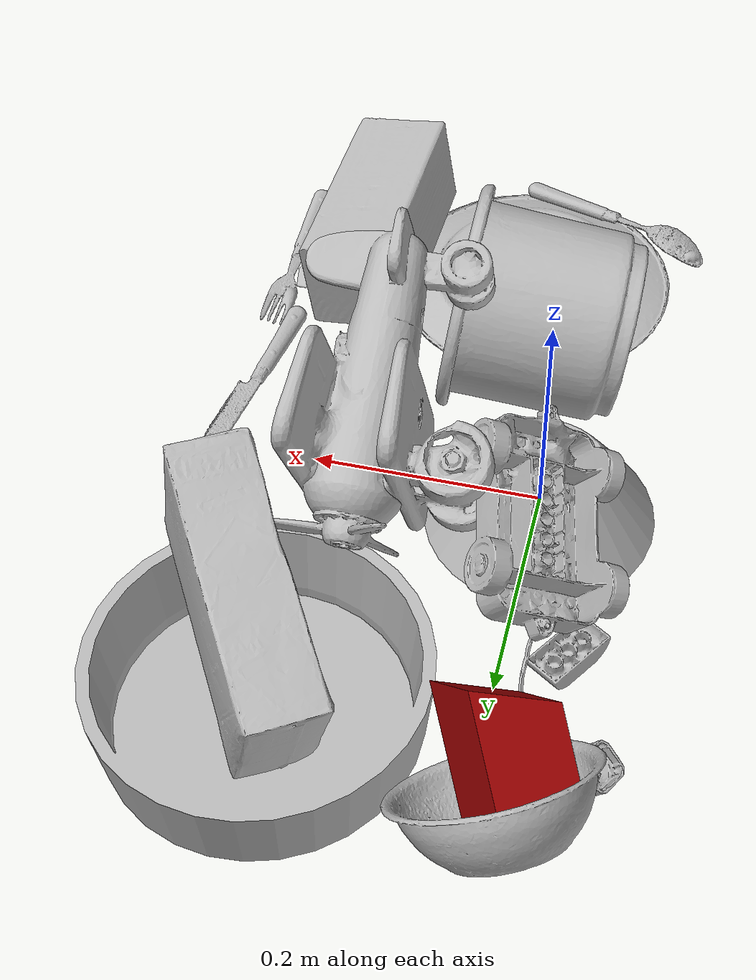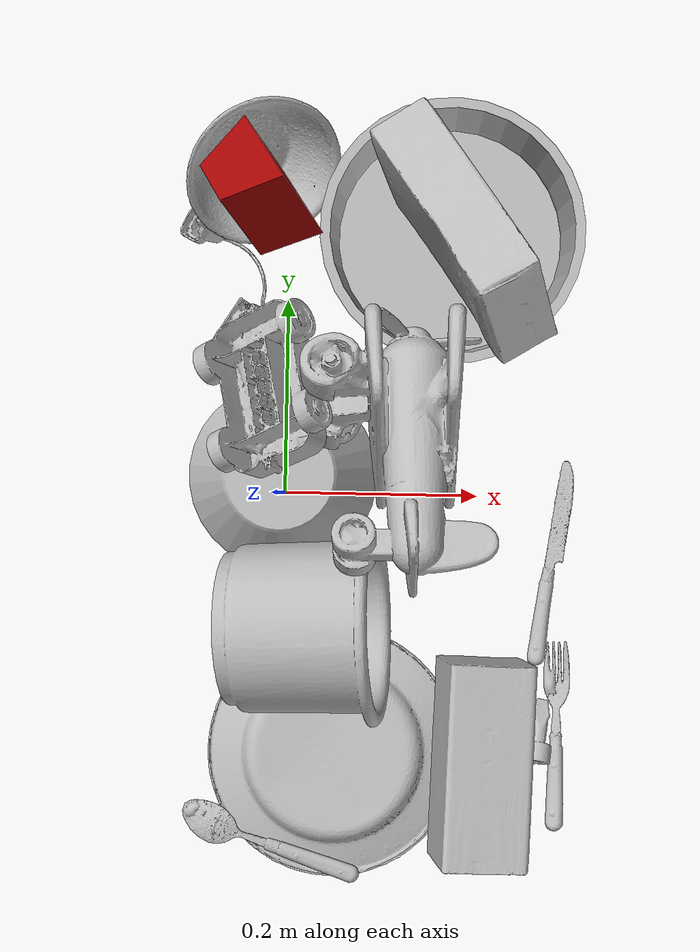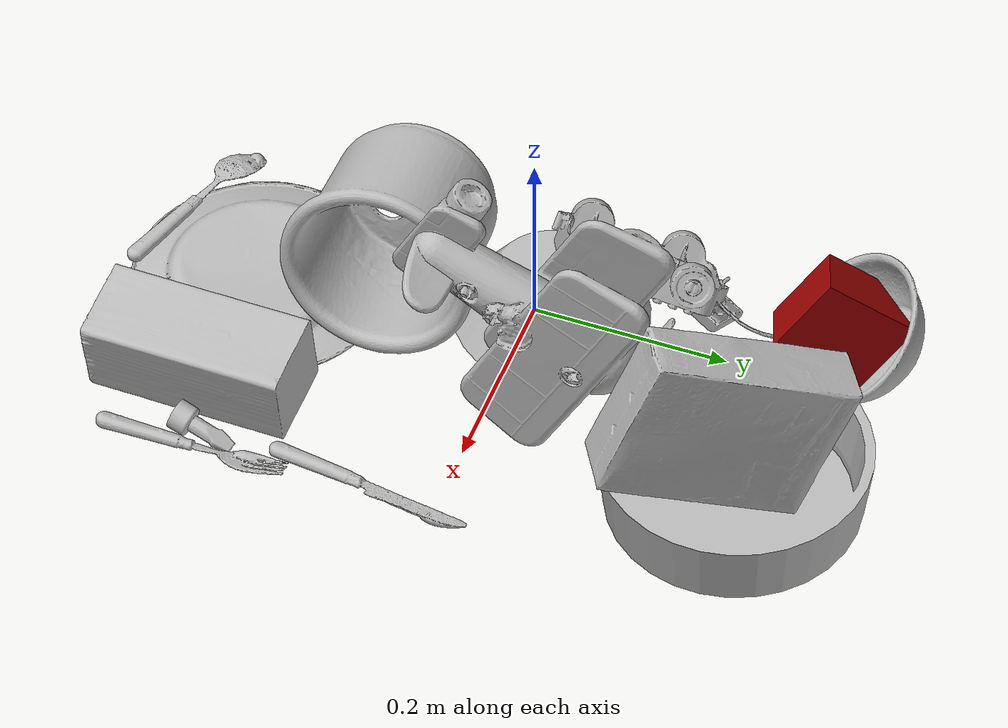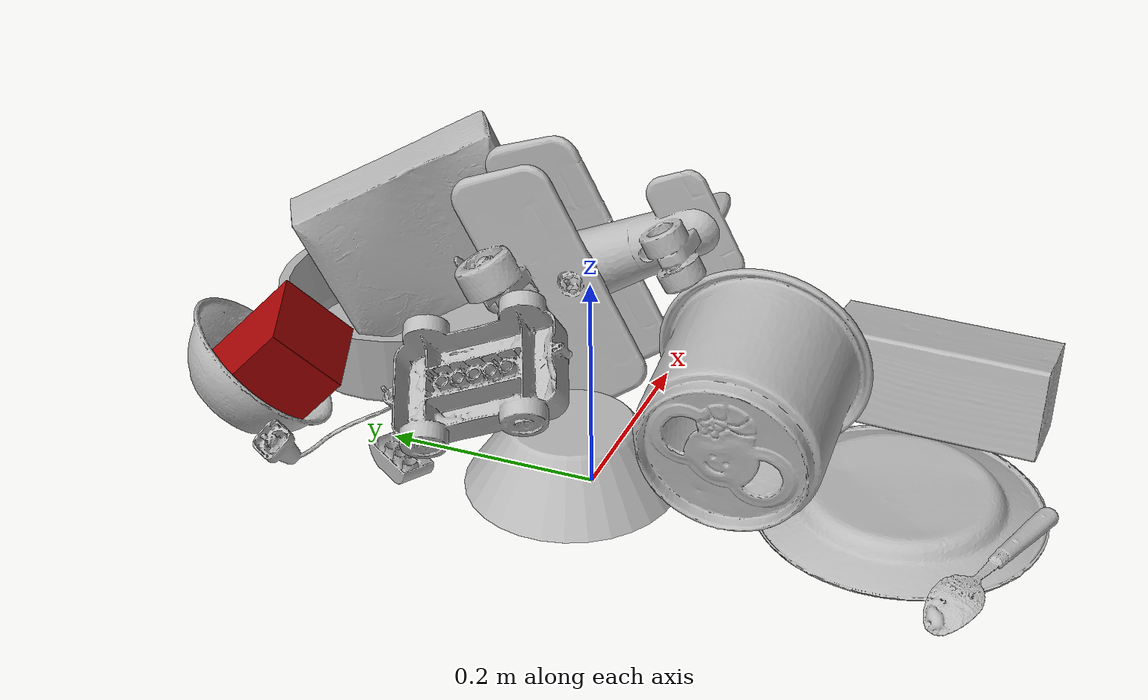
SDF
<sdf version="1.4">
  <world name="default">
    <light name="light1" type="point">
      <pose>0 0 1 0 0 0</pose>
      <diffuse>3 3 3 1</diffuse>
      <specular>3 3 3 1</specular>
    </light>
    <light name="light2" type="point">
      <pose>0 0.5 2 0 0 0</pose>
      <diffuse>1 1 1 1</diffuse>
      <specular>1 1 1 1</specular>
    </light>
    <light name="light3" type="point">
      <pose>0 0.5 2 0 0 0</pose>
      <diffuse>3 3 3 1</diffuse>
      <specular>3 3 3 1</specular>
    </light>
    <scene>
      <ambient>0.7 0.7 0.7</ambient>
    </scene>
    <model name="plate1">
      <link name="link_plate1">
        <collision name="default">
          <geometry>
            <mesh>
              <uri>model://plate/collision_meshes/collision.obj</uri>
              <scale>1.0 1.0 1.0</scale>
            </mesh>
          </geometry>
          <surface>
            <friction>
              <ode>
                <mu>0.5</mu>
                <mu2>0.5</mu2>
              </ode>
            </friction>
          <contact>
        <ode>
            <max_vel>0</max_vel>
            <min_depth>0.0001</min_depth>
            <kp>1e8</kp>
        </ode>
    </contact></surface>
        </collision>
        <visual name="default">
          <geometry>
            <mesh>
              <uri>model://plate/visual_meshes/visual.dae</uri>
              <scale>1.0 1.0 1.0</scale>
            </mesh>
          </geometry>
        </visual>
        <inertial>
          <mass>0.18013060092926025</mass>
          <pose>-0.0006044624606147408 0.0002782579977065325 -0.0010561981471255422 0.0022187543261248163 -0.003225499970721242 0.452618951787785</pose>
          <inertia>
            <ixx>0.00084265455</ixx>
            <iyy>0.000834595</iyy>
            <izz>0.0016481068</izz>
            <ixy>0</ixy>
            <ixz>0</ixz>
            <iyz>0</iyz>
          </inertia>
        </inertial>
      </link>
      <pose>0.05592770874500275 -0.26762545108795166 0.013417967595160007 3.1415158159665917 -0.0035191463486704258 1.1590495646529593</pose>
    </model>
    <model name="plate2">
      <link name="link_plate2">
        <collision name="default">
          <geometry>
            <mesh>
              <uri>model://pan_tefal/collision_meshes/collision.obj</uri>
              <scale>1.0 1.0 1.0</scale>
            </mesh>
          </geometry>
          <surface>
            <friction>
              <ode>
                <mu>0.5</mu>
                <mu2>0.5</mu2>
              </ode>
            </friction>
          <contact>
        <ode>
            <max_vel>0</max_vel>
            <min_depth>0.0001</min_depth>
            <kp>1e8</kp>
        </ode>
    </contact></surface>
        </collision>
        <visual name="default">
          <geometry>
            <mesh>
              <uri>model://pan_tefal/visual_meshes/visual.dae</uri>
              <scale>1.0 1.0 1.0</scale>
            </mesh>
          </geometry>
        </visual>
        <inertial>
          <mass>1.1554980278015137</mass>
          <pose>-0.00018001958960667253 3.279018710600212e-05 -0.008514934219419956 0.0008190268412404128 -0.0003301434555644904 -0.33185316474518306</pose>
          <inertia>
            <ixx>0.007976347</ixx>
            <iyy>0.008027771</iyy>
            <izz>0.014682918</izz>
            <ixy>0</ixy>
            <ixz>0</ixz>
            <iyz>0</iyz>
          </inertia>
        </inertial>
      </link>
      <pose>0.16630111634731293 0.2642088830471039 0.038050759583711624 6.1190176236884475e-06 6.077164610750241e-07 -0.3445673787147492</pose>
    </model>
    <model name="bowl1">
      <link name="link_bowl1">
        <collision name="default">
          <geometry>
            <mesh>
              <uri>model://bowl/collision_meshes/collision.obj</uri>
              <scale>1.0 1.0 1.0</scale>
            </mesh>
          </geometry>
          <surface>
            <friction>
              <ode>
                <mu>0.5</mu>
                <mu2>0.5</mu2>
              </ode>
            </friction>
          <contact>
        <ode>
            <max_vel>0</max_vel>
            <min_depth>0.0001</min_depth>
            <kp>1e8</kp>
        </ode>
    </contact></surface>
        </collision>
        <visual name="default">
          <geometry>
            <mesh>
              <uri>model://bowl/visual_meshes/visual.dae</uri>
              <scale>1.0 1.0 1.0</scale>
            </mesh>
          </geometry>
        </visual>
        <inertial>
          <mass>0.08154366910457611</mass>
          <pose>0.0002044497523456812 -0.0010302083101123571 -0.0008042664267122746 -0.01576409235239578 0.014546819263349199 0.7140418673414882</pose>
          <inertia>
            <ixx>0.00018731231</ixx>
            <iyy>0.000183127</iyy>
            <izz>0.00031512365</izz>
            <ixy>0</ixy>
            <ixz>0</ixz>
            <iyz>0</iyz>
          </inertia>
        </inertial>
      </link>
      <pose>-0.03154604509472847 0.33418703079223633 0.051355112344026566 -0.427734494985217 -0.6686724435257182 2.774262395867444</pose>
    </model>
    <model name="bowl2">
      <link name="link_bowl2">
        <collision name="default">
          <geometry>
            <mesh>
              <uri>model://bowl_a/collision_meshes/collision.obj</uri>
              <scale>1.0 1.0 1.0</scale>
            </mesh>
          </geometry>
          <surface>
            <friction>
              <ode>
                <mu>0.5</mu>
                <mu2>0.5</mu2>
              </ode>
            </friction>
          <contact>
        <ode>
            <max_vel>0</max_vel>
            <min_depth>0.0001</min_depth>
            <kp>1e8</kp>
        </ode>
    </contact></surface>
        </collision>
        <visual name="default">
          <geometry>
            <mesh>
              <uri>model://bowl_a/visual_meshes/visual.dae</uri>
              <scale>1.0 1.0 1.0</scale>
            </mesh>
          </geometry>
        </visual>
        <inertial>
          <mass>0.4363987147808075</mass>
          <pose>0.0002786752884276211 4.73113359475974e-05 -0.0013765294570475817 -0.0009805318297205425 -0.0010938254473046036 -0.19123908587825994</pose>
          <inertia>
            <ixx>0.0012424473</ixx>
            <iyy>0.001250075</iyy>
            <izz>0.0022097398</izz>
            <ixy>0</ixy>
            <ixz>0</ixz>
            <iyz>0</iyz>
          </inertia>
        </inertial>
      </link>
      <pose>-0.0023081167601048946 0.01760282926261425 0.030100759118795395 -3.141584268370963 1.707171323962011e-05 1.9944466438544108</pose>
    </model>
    <model name="silverware1">
      <link name="link_silverware1">
        <collision name="default">
          <geometry>
            <mesh>
              <uri>model://spoon/collision_meshes/collision.obj</uri>
              <scale>1.0 1.0 1.0</scale>
            </mesh>
          </geometry>
          <surface>
            <friction>
              <ode>
                <mu>0.5</mu>
                <mu2>0.5</mu2>
              </ode>
            </friction>
          <contact>
        <ode>
            <max_vel>0</max_vel>
            <min_depth>0.0001</min_depth>
            <kp>1e8</kp>
        </ode>
    </contact></surface>
        </collision>
        <visual name="default">
          <geometry>
            <mesh>
              <uri>model://spoon/visual_meshes/visual.dae</uri>
              <scale>1.0 1.0 1.0</scale>
            </mesh>
          </geometry>
        </visual>
        <inertial>
          <mass>0.034700214862823486</mass>
          <pose>-0.00552632100880146 -0.0016034168656915426 -0.0007271654903888702 0.03521477925438783 -0.03906582568380071 0.006150611591128785</pose>
          <inertia>
            <ixx>1.9300821e-06</ixx>
            <iyy>0.00013203312</iyy>
            <izz>0.00013298499</izz>
            <ixy>0</ixy>
            <ixz>0</ixz>
            <iyz>0</iyz>
          </inertia>
        </inertial>
      </link>
      <pose>-0.008194107562303543 -0.3609839081764221 0.013265055604279041 2.9643729175197624 -0.03775351683094402 2.8091340021605844</pose>
    </model>
    <model name="box1">
      <link name="link_box1">
        <collision name="default">
          <geometry>
            <mesh>
              <uri>model://cracker_box/collision_meshes/collision.obj</uri>
              <scale>1.0 1.0 1.0</scale>
            </mesh>
          </geometry>
          <surface>
            <friction>
              <ode>
                <mu>0.5</mu>
                <mu2>0.5</mu2>
              </ode>
            </friction>
          <contact>
        <ode>
            <max_vel>0</max_vel>
            <min_depth>0.0001</min_depth>
            <kp>1e8</kp>
        </ode>
    </contact></surface>
        </collision>
        <visual name="default">
          <geometry>
            <mesh>
              <uri>model://cracker_box/visual_meshes/visual.dae</uri>
              <scale>1.0 1.0 1.0</scale>
            </mesh>
          </geometry>
        </visual>
        <inertial>
          <mass>1.831273078918457</mass>
          <pose>0.000946414191275835 0.00025434247800149024 -0.0017029533628374338 -0.0003162074786093215 -0.01110648680647863 0.0025467950006863548</pose>
          <inertia>
            <ixx>0.0046579414</ixx>
            <iyy>0.0076911766</iyy>
            <izz>0.010976015</izz>
            <ixy>0</ixy>
            <ixz>0</ixz>
            <iyz>0</iyz>
          </inertia>
        </inertial>
      </link>
      <pose>0.1754428744316101 0.25256699323654175 0.12239934504032135 -1.6006325164953032 0.3866270773512027 2.1163809521679244</pose>
    </model>
    <model name="box2">
      <link name="link_box2">
        <collision name="default">
          <geometry>
            <mesh>
              <uri>model://wood_block/collision_meshes/collision.obj</uri>
              <scale>1.0 1.0 1.0</scale>
            </mesh>
          </geometry>
          <surface>
            <friction>
              <ode>
                <mu>0.5</mu>
                <mu2>0.5</mu2>
              </ode>
            </friction>
          <contact>
        <ode>
            <max_vel>0</max_vel>
            <min_depth>0.0001</min_depth>
            <kp>1e8</kp>
        </ode>
    </contact></surface>
        </collision>
        <visual name="default">
          <geometry>
            <mesh>
              <uri>model://wood_block/visual_meshes/visual.dae</uri>
              <scale>1.0 1.0 1.0</scale>
            </mesh>
          </geometry>
        </visual>
        <inertial>
          <mass>1.0038666725158691</mass>
          <pose>-5.813315510749817e-06 -0.000570809468626976 0.0002640858292579651 -0.05221020962952386 -0.005192696059900718 -0.006861377701075274</pose>
          <inertia>
            <ixx>0.0013433257</ixx>
            <iyy>0.0042435657</iyy>
            <izz>0.0042276927</izz>
            <ixy>0</ixy>
            <ixz>0</ixz>
            <iyz>0</iyz>
          </inertia>
        </inertial>
      </link>
      <pose>0.206594318151474 -0.268882691860199 0.05000044405460358 3.003956562656869 0.005156563222236931 -1.5998921711737308</pose>
    </model>
    <model name="cup1">
      <link name="link_cup1">
        <collision name="default">
          <geometry>
            <mesh>
              <uri>model://i_cups/collision_meshes/collision.obj</uri>
              <scale>2.0 2.0 2.0</scale>
            </mesh>
          </geometry>
          <surface>
            <friction>
              <ode>
                <mu>0.5</mu>
                <mu2>0.5</mu2>
              </ode>
            </friction>
          <contact>
        <ode>
            <max_vel>0</max_vel>
            <min_depth>0.0001</min_depth>
            <kp>1e8</kp>
        </ode>
    </contact></surface>
        </collision>
        <visual name="default">
          <geometry>
            <mesh>
              <uri>model://i_cups/visual_meshes/visual.dae</uri>
              <scale>2.0 2.0 2.0</scale>
            </mesh>
          </geometry>
        </visual>
        <inertial>
          <mass>0.6038269996643066</mass>
          <pose>0.00022479970357380807 0.0003359453985467553 -0.001715799910016358 -0.02898255198870416 -0.03987340808103542 -0.3459203892901821</pose>
          <inertia>
            <ixx>0.0033440301</ixx>
            <iyy>0.003373493</iyy>
            <izz>0.0037374943</izz>
            <ixy>0</ixy>
            <ixz>0</ixz>
            <iyz>0</iyz>
          </inertia>
        </inertial>
      </link>
      <pose>0.026120785623788834 -0.1320277899503708 0.09184078127145767 -1.4380799883618292 0.1339450786568777 -1.5067185865596133</pose>
    </model>
    <model name="silverware2">
      <link name="link_silverware2">
        <collision name="default">
          <geometry>
            <mesh>
              <uri>model://knife/collision_meshes/collision.obj</uri>
              <scale>1.0 1.0 1.0</scale>
            </mesh>
          </geometry>
          <surface>
            <friction>
              <ode>
                <mu>0.5</mu>
                <mu2>0.5</mu2>
              </ode>
            </friction>
          <contact>
        <ode>
            <max_vel>0</max_vel>
            <min_depth>0.0001</min_depth>
            <kp>1e8</kp>
        </ode>
    </contact></surface>
        </collision>
        <visual name="default">
          <geometry>
            <mesh>
              <uri>model://knife/visual_meshes/visual.dae</uri>
              <scale>1.0 1.0 1.0</scale>
            </mesh>
          </geometry>
        </visual>
        <inertial>
          <mass>0.01351180113852024</mass>
          <pose>-0.023785246536135674 0.0015275131445378065 5.062015407020226e-05 0.073058244240525 0.017248418380522417 -0.007409818685807072</pose>
          <inertia>
            <ixx>3.8351965e-07</ixx>
            <iyy>5.1910156e-05</iyy>
            <izz>5.2033673e-05</izz>
            <ixy>0</ixy>
            <ixz>0</ixz>
            <iyz>0</iyz>
          </inertia>
        </inertial>
      </link>
      <pose>0.279415488243103 -0.06793562322854996 0.008136846125125885 -0.28174623769100654 -0.008871530354694837 1.4224318003556091</pose>
    </model>
    <model name="silverware3">
      <link name="link_silverware3">
        <collision name="default">
          <geometry>
            <mesh>
              <uri>model://fork/collision_meshes/collision.obj</uri>
              <scale>1.0 1.0 1.0</scale>
            </mesh>
          </geometry>
          <surface>
            <friction>
              <ode>
                <mu>0.5</mu>
                <mu2>0.5</mu2>
              </ode>
            </friction>
          <contact>
        <ode>
            <max_vel>0</max_vel>
            <min_depth>0.0001</min_depth>
            <kp>1e8</kp>
        </ode>
    </contact></surface>
        </collision>
        <visual name="default">
          <geometry>
            <mesh>
              <uri>model://fork/visual_meshes/visual.dae</uri>
              <scale>1.0 1.0 1.0</scale>
            </mesh>
          </geometry>
        </visual>
        <inertial>
          <mass>0.030749449506402016</mass>
          <pose>-0.029570044949650764 0.0004658822435885668 0.00032188615296036005 -0.013551266353778695 -0.010977839115777554 0.014453902178384312</pose>
          <inertia>
            <ixx>1.0779423e-06</ixx>
            <iyy>8.0277954e-05</iyy>
            <izz>8.076011e-05</izz>
            <ixy>0</ixy>
            <ixz>0</ixz>
            <iyz>0</iyz>
          </inertia>
        </inertial>
      </link>
      <pose>0.28668493032455444 -0.24691031873226166 0.0057099126279354095 -0.18245500936456668 0.024650542951116485 1.5657324192612456</pose>
    </model>
    <model name="toy1">
      <link name="link_toy1">
        <collision name="default">
          <geometry>
            <mesh>
              <uri>model://e_toy_airplane/collision_meshes/collision.obj</uri>
              <scale>1.0 1.0 1.0</scale>
            </mesh>
          </geometry>
          <surface>
            <friction>
              <ode>
                <mu>0.5</mu>
                <mu2>0.5</mu2>
              </ode>
            </friction>
          <contact>
        <ode>
            <max_vel>0</max_vel>
            <min_depth>0.0001</min_depth>
            <kp>1e8</kp>
        </ode>
    </contact></surface>
        </collision>
        <visual name="default">
          <geometry>
            <mesh>
              <uri>model://e_toy_airplane/visual_meshes/visual.dae</uri>
              <scale>1.0 1.0 1.0</scale>
            </mesh>
          </geometry>
        </visual>
        <inertial>
          <mass>0.01770107075572014</mass>
          <pose>0.00011740486661437899 -2.248296732432209e-05 -0.011187206022441387 0.005518513464699853 0.009228302242376646 0.15041570361631973</pose>
          <inertia>
            <ixx>5.4025695e-06</ixx>
            <iyy>5.3473045e-06</iyy>
            <izz>1.6236847e-06</izz>
            <ixy>0</ixy>
            <ixz>0</ixz>
            <iyz>0</iyz>
          </inertia>
        </inertial>
      </link>
      <pose>0.26808860898017883 -0.24095673859119415 0.010870153084397316 3.003797539640727 1.310317413816993 -1.850666718817031</pose>
    </model>
    <model name="toy2">
      <link name="link_toy2">
        <collision name="default">
          <geometry>
            <mesh>
              <uri>model://a_toy_airplane/collision_meshes/collision.obj</uri>
              <scale>1.0 1.0 1.0</scale>
            </mesh>
          </geometry>
          <surface>
            <friction>
              <ode>
                <mu>0.5</mu>
                <mu2>0.5</mu2>
              </ode>
            </friction>
          <contact>
        <ode>
            <max_vel>0</max_vel>
            <min_depth>0.0001</min_depth>
            <kp>1e8</kp>
        </ode>
    </contact></surface>
        </collision>
        <visual name="default">
          <geometry>
            <mesh>
              <uri>model://a_toy_airplane/visual_meshes/visual.dae</uri>
              <scale>1.0 1.0 1.0</scale>
            </mesh>
          </geometry>
        </visual>
        <inertial>
          <mass>1.6391528844833374</mass>
          <pose>0.02516508661210537 -0.003707319963723421 -0.0011962438002228737 -0.012016999892079352 -0.14663507149587088 0.004149061575203148</pose>
          <inertia>
            <ixx>0.0059525487</ixx>
            <iyy>0.008674072</iyy>
            <izz>0.01015627</izz>
            <ixy>0</ixy>
            <ixz>0</ixz>
            <iyz>0</iyz>
          </inertia>
        </inertial>
      </link>
      <pose>0.12841534614562988 0.04297415167093277 0.1566256284713745 1.6571228824718505 0.48011152617087804 1.8048027620949163</pose>
    </model>
    <model name="toy3">
      <link name="link_toy3">
        <collision name="default">
          <geometry>
            <mesh>
              <uri>model://g_lego_duplo/collision_meshes/collision.obj</uri>
              <scale>1.0 1.0 1.0</scale>
            </mesh>
          </geometry>
          <surface>
            <friction>
              <ode>
                <mu>0.5</mu>
                <mu2>0.5</mu2>
              </ode>
            </friction>
          <contact>
        <ode>
            <max_vel>0</max_vel>
            <min_depth>0.0001</min_depth>
            <kp>1e8</kp>
        </ode>
    </contact></surface>
        </collision>
        <visual name="default">
          <geometry>
            <mesh>
              <uri>model://g_lego_duplo/visual_meshes/visual.dae</uri>
              <scale>1.0 1.0 1.0</scale>
            </mesh>
          </geometry>
        </visual>
        <inertial>
          <mass>0.5092288255691528</mass>
          <pose>-0.05004768446087837 0.0017554641235619783 0.0038806775119155645 0.010963010010498962 0.03810823590924119 -0.09653024292159736</pose>
          <inertia>
            <ixx>0.00073787844</ixx>
            <iyy>0.002230844</iyy>
            <izz>0.002790868</izz>
            <ixy>0</ixy>
            <ixz>0</ixz>
            <iyz>0</iyz>
          </inertia>
        </inertial>
      </link>
      <pose>-0.030343104153871536 0.1563052237033844 0.07196830958127975 2.589115262031586 0.3487086392815315 1.7875726760609463</pose>
    </model>
    <model name="toy4">
      <link name="link_toy4">
        <collision name="default">
          <geometry>
            <mesh>
              <uri>model://a_lego_duplo/collision_meshes/collision.obj</uri>
              <scale>1.0 1.0 1.0</scale>
            </mesh>
          </geometry>
          <surface>
            <friction>
              <ode>
                <mu>0.5</mu>
                <mu2>0.5</mu2>
              </ode>
            </friction>
          <contact>
        <ode>
            <max_vel>0</max_vel>
            <min_depth>0.0001</min_depth>
            <kp>1e8</kp>
        </ode>
    </contact></surface>
        </collision>
        <visual name="default">
          <geometry>
            <mesh>
              <uri>model://a_lego_duplo/visual_meshes/visual.dae</uri>
              <scale>1.0 1.0 1.0</scale>
            </mesh>
          </geometry>
        </visual>
        <inertial>
          <mass>0.03161923587322235</mass>
          <pose>-0.00011337598698446527 0.00018517524586059153 0.00036926084430888295 -0.014116977368405541 -0.00012565500284871778 6.143069663272407e-05</pose>
          <inertia>
            <ixx>4.0538393e-06</ixx>
            <iyy>9.081488e-06</iyy>
            <izz>1.1249442e-05</izz>
            <ixy>0</ixy>
            <ixz>0</ixz>
            <iyz>0</iyz>
          </inertia>
        </inertial>
      </link>
      <pose>-0.05199013277888298 0.16470465064048767 0.012124746106564999 -3.1412971984880143 -0.01558234821687822 0.9960572725106593</pose>
    </model>
    <model name="toy5">
      <link name="link_toy5">
        <collision name="default">
          <geometry>
            <mesh>
              <uri>model://prism/collision_meshes/collision.obj</uri>
              <scale>1.0 1.0 1.0</scale>
            </mesh>
          </geometry>
          <surface>
            <friction>
              <ode>
                <mu>0.5</mu>
                <mu2>0.5</mu2>
              </ode>
            </friction>
          <contact>
        <ode>
            <max_vel>0</max_vel>
            <min_depth>0.0001</min_depth>
            <kp>1e8</kp>
        </ode>
    </contact></surface>
        </collision>
        <visual name="default">
          <geometry>
            <mesh>
              <uri>model://prism/visual_meshes/visual.dae</uri>
              <scale>1.0 1.0 1.0</scale>
            </mesh>
          </geometry>
        </visual>
        <inertial>
          <mass>0.5650969743728638</mass>
          <pose>-9.85359656624496e-05 -4.96157269935793e-07 -0.0033869100734591484 0.0 0.006559179369129768 0.0</pose>
          <inertia>
            <ixx>0.00050999306</ixx>
            <iyy>0.00061633316</iyy>
            <izz>0.00075493456</izz>
            <ixy>0</ixy>
            <ixz>0</ixz>
            <iyz>0</iyz>
          </inertia>
        </inertial>
      </link>
      <pose>-0.029392916709184647 0.298828125 0.07296296954154968 -1.6815634590727075 0.730472058307679 2.105593220655396</pose>
    </model>
  <physics type="ode">
      <max_contacts>50</max_contacts>
      <ode>
        <solver>
          <type>quick</type>
          <iters>75</iters>
        </solver>
        <constraints>
          <contact_max_correcting_vel>0</contact_max_correcting_vel>
          <contact_surface_layer>0</contact_surface_layer>
        </constraints>
      </ode>
    </physics></world>
</sdf>
